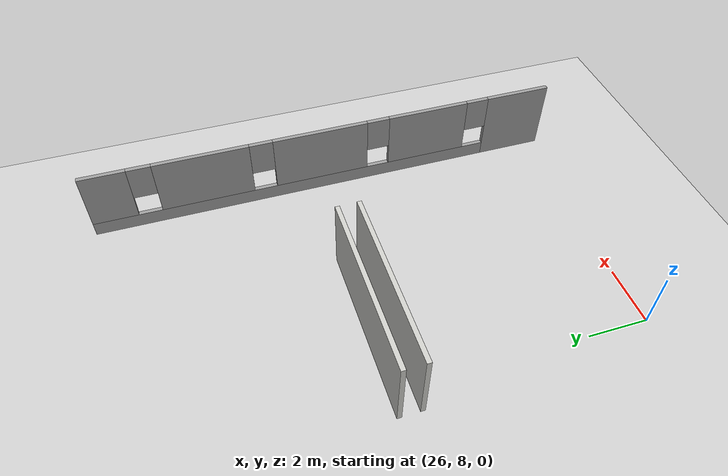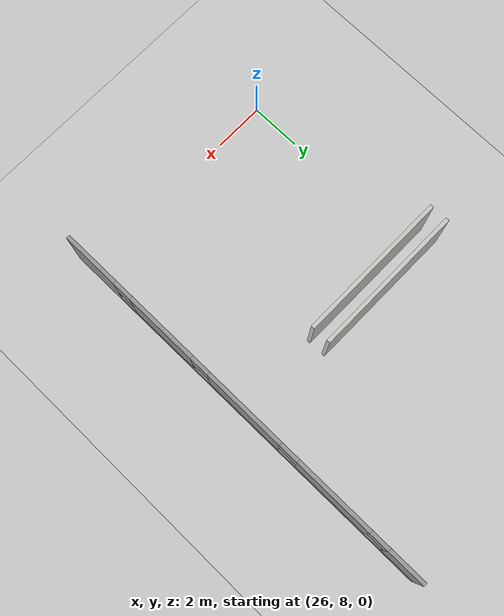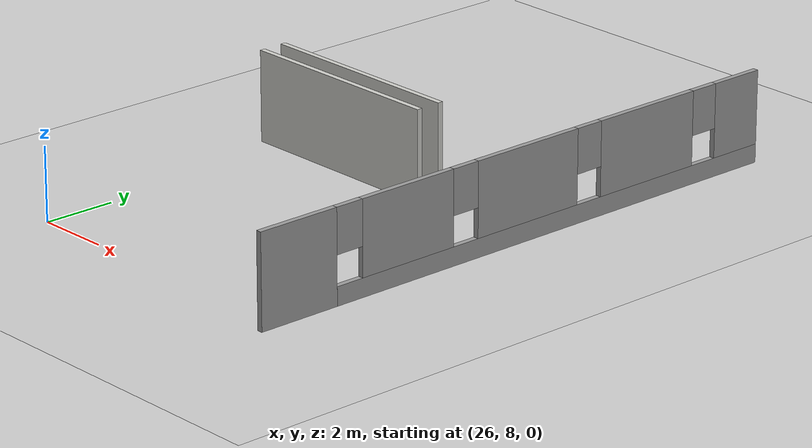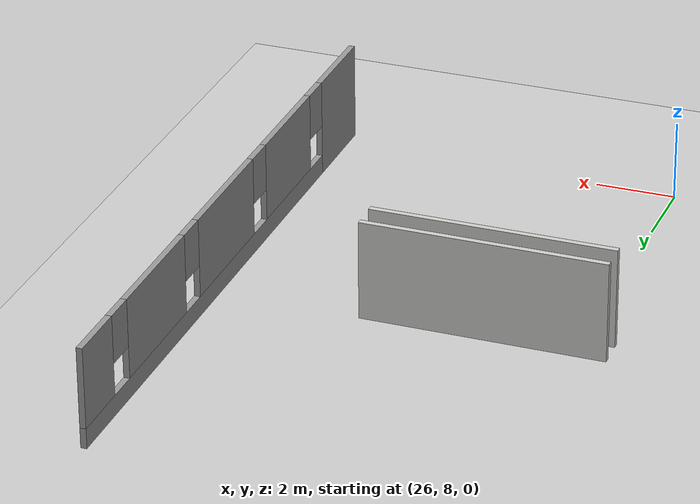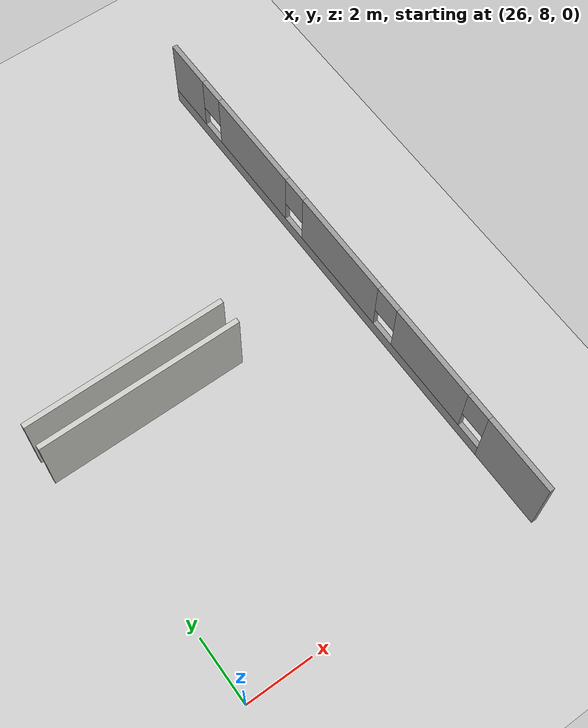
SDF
<sdf version="1.6">
 <world name="default">
  <model name="ground_plane">
   <static>1</static>
   <link name="link">
    <collision name="collision">
     <geometry><plane><normal>0 0 1</normal><size>100 100</size></plane></geometry>
     <surface>
      <contact><collide_bitmask>65535</collide_bitmask></contact>
      <friction><ode><mu>100</mu><mu2>50</mu2></ode></friction>
     </surface>
    </collision>
    <visual name="visual">
     <cast_shadows>0</cast_shadows>
     <geometry><plane><normal>0 0 1</normal><size>100 100</size></plane></geometry>
     <material>
      <script><uri>file://media/materials/scripts/gazebo.material</uri><name>Gazebo/Grey</name></script>
     </material>
    </visual>
   </link>
  </model>
  <model name="firstFloor">
   <pose>-0.116512 3.07366 0 0 -0 0</pose>
   <link name="Wall_22">
    <collision name="Wall_22_Collision">
     <geometry><box><size>6 0.15 2.5</size></box></geometry>
     <pose>0 0 1.25 0 -0 0</pose>
    </collision>
    <visual name="Wall_22_Visual">
     <pose>0 0 1.25 0 -0 0</pose>
     <geometry><box><size>6 0.15 2.5</size></box></geometry>
     <material>
      <script><uri>file://media/materials/scripts/gazebo.material</uri><name>Gazebo/CeilingTiled</name></script>
      <ambient>1 1 1 1</ambient>
     </material>
     <meta><layer>0</layer></meta>
    </visual>
    <pose>28.2901 13.2878 0 0 -0 0</pose>
   </link>
   <link name="Wall_24">
    <collision name="Wall_24_Collision">
     <geometry><box><size>6 0.15 2.5</size></box></geometry>
     <pose>0 0 1.25 0 -0 0</pose>
    </collision>
    <visual name="Wall_24_Visual">
     <pose>0 0 1.25 0 -0 0</pose>
     <geometry><box><size>6 0.15 2.5</size></box></geometry>
     <material>
      <script><uri>file://media/materials/scripts/gazebo.material</uri><name>Gazebo/CeilingTiled</name></script>
      <ambient>1 1 1 1</ambient>
     </material>
     <meta><layer>0</layer></meta>
    </visual>
    <pose>28.3012 12.5835 0 0 -0 3.14159</pose>
   </link>
   <link name="Wall_8">
    <pose>34.8468 12.6197 0 0 -0 1.5708</pose>
    <visual name="Wall_8_Visual_0">
     <pose>-7.09151 0 1.25 0 -0 0</pose>
     <geometry><box><size>2.31697 0.15 2.5</size></box></geometry>
     <material>
      <script><uri>file://media/materials/scripts/gazebo.material</uri><name>Gazebo/Grey</name></script>
      <ambient>1 1 1 1</ambient>
     </material>
     <meta><layer>0</layer></meta>
    </visual>
    <collision name="Wall_8_Collision_0">
     <geometry><box><size>2.31697 0.15 2.5</size></box></geometry>
     <pose>-7.09151 0 1.25 0 -0 0</pose>
    </collision>
    <visual name="Wall_8_Visual_1">
     <pose>1.15849 0 0.25 0 -0 0</pose>
     <geometry><box><size>14.183 0.15 0.5</size></box></geometry>
     <material>
      <script><uri>file://media/materials/scripts/gazebo.material</uri><name>Gazebo/Grey</name></script>
      <ambient>1 1 1 1</ambient>
     </material>
     <meta><layer>0</layer></meta>
    </visual>
    <collision name="Wall_8_Collision_1">
     <geometry><box><size>14.183 0.15 0.5</size></box></geometry>
     <pose>1.15849 0 0.25 0 -0 0</pose>
    </collision>
    <visual name="Wall_8_Visual_2">
     <pose>-3.68153 0 1.5 0 -0 0</pose>
     <geometry><box><size>2.903 0.15 2</size></box></geometry>
     <material>
      <script><uri>file://media/materials/scripts/gazebo.material</uri><name>Gazebo/Grey</name></script>
      <ambient>1 1 1 1</ambient>
     </material>
     <meta><layer>0</layer></meta>
    </visual>
    <collision name="Wall_8_Collision_2">
     <geometry><box><size>2.903 0.15 2</size></box></geometry>
     <pose>-3.68153 0 1.5 0 -0 0</pose>
    </collision>
    <visual name="Wall_8_Visual_3">
     <pose>0.233074 0 1.5 0 -0 0</pose>
     <geometry><box><size>3.3262 0.15 2</size></box></geometry>
     <material>
      <script><uri>file://media/materials/scripts/gazebo.material</uri><name>Gazebo/Grey</name></script>
      <ambient>1 1 1 1</ambient>
     </material>
     <meta><layer>0</layer></meta>
    </visual>
    <collision name="Wall_8_Collision_3">
     <geometry><box><size>3.3262 0.15 2</size></box></geometry>
     <pose>0.233074 0 1.5 0 -0 0</pose>
    </collision>
    <visual name="Wall_8_Visual_4">
     <pose>4.30637 0 1.5 0 -0 0</pose>
     <geometry><box><size>3.2204 0.15 2</size></box></geometry>
     <material>
      <script><uri>file://media/materials/scripts/gazebo.material</uri><name>Gazebo/Grey</name></script>
      <ambient>1 1 1 1</ambient>
     </material>
     <meta><layer>0</layer></meta>
    </visual>
    <collision name="Wall_8_Collision_4">
     <geometry><box><size>3.2204 0.15 2</size></box></geometry>
     <pose>4.30637 0 1.5 0 -0 0</pose>
    </collision>
    <visual name="Wall_8_Visual_5">
     <pose>7.48329 0 1.5 0 -0 0</pose>
     <geometry><box><size>1.53343 0.15 2</size></box></geometry>
     <material>
      <script><uri>file://media/materials/scripts/gazebo.material</uri><name>Gazebo/Grey</name></script>
      <ambient>1 1 1 1</ambient>
     </material>
     <meta><layer>0</layer></meta>
    </visual>
    <collision name="Wall_8_Collision_5">
     <geometry><box><size>1.53343 0.15 2</size></box></geometry>
     <pose>7.48329 0 1.5 0 -0 0</pose>
    </collision>
    <visual name="Wall_8_Visual_6">
     <pose>-5.53303 0 1.9 0 -0 0</pose>
     <geometry><box><size>0.8 0.15 1.2</size></box></geometry>
     <material>
      <script><uri>file://media/materials/scripts/gazebo.material</uri><name>Gazebo/Grey</name></script>
      <ambient>1 1 1 1</ambient>
     </material>
     <meta><layer>0</layer></meta>
    </visual>
    <collision name="Wall_8_Collision_6">
     <geometry><box><size>0.8 0.15 1.2</size></box></geometry>
     <pose>-5.53303 0 1.9 0 -0 0</pose>
    </collision>
    <visual name="Wall_8_Visual_7">
     <pose>-1.83003 0 1.9 0 -0 0</pose>
     <geometry><box><size>0.8 0.15 1.2</size></box></geometry>
     <material>
      <script><uri>file://media/materials/scripts/gazebo.material</uri><name>Gazebo/Grey</name></script>
      <ambient>1 1 1 1</ambient>
     </material>
     <meta><layer>0</layer></meta>
    </visual>
    <collision name="Wall_8_Collision_7">
     <geometry><box><size>0.8 0.15 1.2</size></box></geometry>
     <pose>-1.83003 0 1.9 0 -0 0</pose>
    </collision>
    <visual name="Wall_8_Visual_8">
     <pose>2.29617 0 1.9 0 -0 0</pose>
     <geometry><box><size>0.8 0.15 1.2</size></box></geometry>
     <material>
      <script><uri>file://media/materials/scripts/gazebo.material</uri><name>Gazebo/Grey</name></script>
      <ambient>1 1 1 1</ambient>
     </material>
     <meta><layer>0</layer></meta>
    </visual>
    <collision name="Wall_8_Collision_8">
     <geometry><box><size>0.8 0.15 1.2</size></box></geometry>
     <pose>2.29617 0 1.9 0 -0 0</pose>
    </collision>
    <visual name="Wall_8_Visual_9">
     <pose>6.31657 0 1.9 0 -0 0</pose>
     <geometry><box><size>0.8 0.15 1.2</size></box></geometry>
     <material>
      <script><uri>file://media/materials/scripts/gazebo.material</uri><name>Gazebo/Grey</name></script>
      <ambient>1 1 1 1</ambient>
     </material>
     <meta><layer>0</layer></meta>
    </visual>
    <collision name="Wall_8_Collision_9">
     <geometry><box><size>0.8 0.15 1.2</size></box></geometry>
     <pose>6.31657 0 1.9 0 -0 0</pose>
    </collision>
   </link>
   <static>1</static>
  </model>
 </world>
</sdf>
